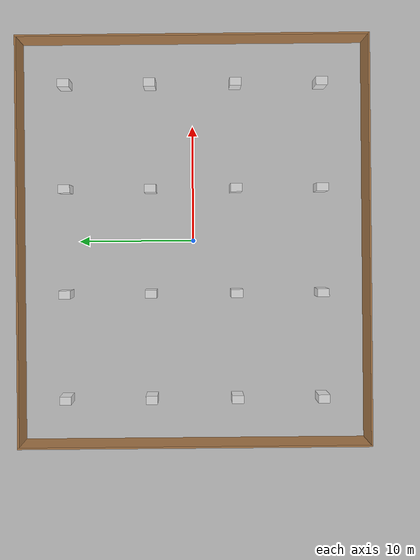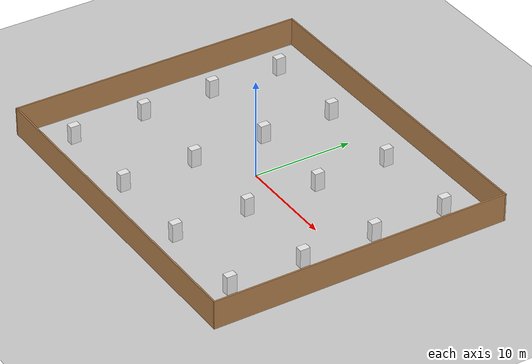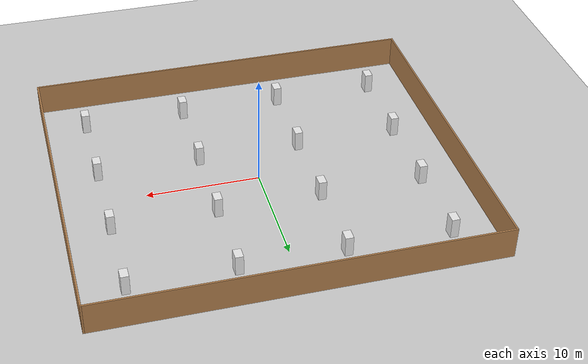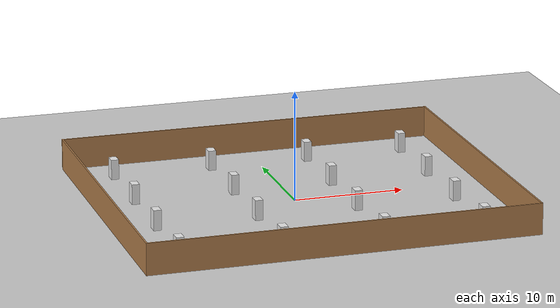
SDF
<sdf version='1.4'>
  <world name='default'>
    <!-- A global light source -->
    <include>
      <uri>model://sun</uri>
    </include>

    <!-- A ground plane -->
    <include>
      <uri>model://ground_plane</uri>
    </include>

    <physics type="ode">
      <real_time_update_rate>1000.0</real_time_update_rate>
      <max_step_size>0.001</max_step_size>
      <real_time_factor>1</real_time_factor>
      <ode>
        <solver>
          <type>quick</type>
          <iters>150</iters>
          <precon_iters>0</precon_iters>
          <sor>1.400000</sor>
          <use_dynamic_moi_rescaling>1</use_dynamic_moi_rescaling>
        </solver>
        <constraints>
          <cfm>0.00001</cfm>
          <erp>0.2</erp>
          <contact_max_correcting_vel>2000.000000</contact_max_correcting_vel>
          <contact_surface_layer>0.01000</contact_surface_layer>
        </constraints>
      </ode>
    </physics>

    <!-- Load model -->
    <include>
      <uri>model://turtlebot3_square2</uri>
    </include>

    <model name='obstacle'>
      <pose frame=''>0 0 0 0 -0 0</pose>
      <link name='obstacle'>
        <collision name='obstacle_1'>
          <pose>-4.55 -3.7 0.25 0 0 0</pose>
          <geometry>
            <box>
              <size>0.7 1 3.1</size>
            </box>
          </geometry>
          <max_contacts>10</max_contacts>
          <surface>
            <bounce/>
            <friction>
              <ode/>
            </friction>
            <contact>
              <ode/>
            </contact>
          </surface>
        </collision>

        <visual name='obstacle_1'>
          <pose>-4.55 -3.7 0.25 0 0 0</pose>
          <geometry>
            <box>
              <size>0.7 1 3.1</size>
            </box>
          </geometry>
          <material>
            <script>
              <uri>file://media/materials/scripts/gazebo.material</uri>
              <name>Gazebo/White</name>
            </script>
          </material>
        </visual>

        <collision name='obstacle_2'>
          <pose>4.55 -3.7 0.25 0 0 0</pose>
          <geometry>
            <box>
              <size>0.7 1 3.1</size>
            </box>
          </geometry>
          <max_contacts>10</max_contacts>
          <surface>
            <bounce/>
            <friction>
              <ode/>
            </friction>
            <contact>
              <ode/>
            </contact>
          </surface>
        </collision>

        <visual name='obstacle_2'>
          <pose>4.55 -3.7 0.25 0 0 0</pose>
          <geometry>
            <box>
              <size>0.7 1 3.1</size>
            </box>
          </geometry>
          <material>
            <script>
              <uri>file://media/materials/scripts/gazebo.material</uri>
              <name>Gazebo/White</name>
            </script>
          </material>
        </visual>

        <collision name='obstacle_3'>
          <pose>-4.55 3.7 0.25 0 0 0</pose>
          <geometry>
            <box>
              <size>0.7 1 3.1</size>
            </box>
          </geometry>
          <max_contacts>10</max_contacts>
          <surface>
            <bounce/>
            <friction>
              <ode/>
            </friction>
            <contact>
              <ode/>
            </contact>
          </surface>
        </collision>

        <visual name='obstacle_3'>
          <pose>-4.55 3.7 0.25 0 0 0</pose>
          <geometry>
            <box>
              <size>0.7 1 3.1</size>
            </box>
          </geometry>
          <material>
            <script>
              <uri>file://media/materials/scripts/gazebo.material</uri>
              <name>Gazebo/White</name>
            </script>
          </material>
        </visual>

        <collision name='obstacle_4'>
          <pose>4.55 3.7 0.25 0 0 0</pose>
          <geometry>
            <box>
              <size>0.7 1 3.1</size>
            </box>
          </geometry>
          <max_contacts>10</max_contacts>
          <surface>
            <bounce/>
            <friction>
              <ode/>
            </friction>
            <contact>
              <ode/>
            </contact>
          </surface>
        </collision>

        <visual name='obstacle_4'>
          <pose>4.55 3.7 0.25 0 0 0</pose>
          <geometry>
            <box>
              <size>0.7 1 3.1</size>
            </box>
          </geometry>
          <material>
            <script>
              <uri>file://media/materials/scripts/gazebo.material</uri>
              <name>Gazebo/White</name>
            </script>
          </material>
        </visual>

        <collision name='obstacle_111'>
          <pose>-13.65 -11.1 0.25 0 0 0</pose>
          <geometry>
            <box>
              <size>0.7 1 3.1</size>
            </box>
          </geometry>
          <max_contacts>10</max_contacts>
          <surface>
            <bounce/>
            <friction>
              <ode/>
            </friction>
            <contact>
              <ode/>
            </contact>
          </surface>
        </collision>

        <visual name='obstacle_111'>
          <pose>-13.65 -11.1 0.25 0 0 0</pose>
          <geometry>
            <box>
              <size>0.7 1 3.1</size>
            </box>
          </geometry>
          <material>
            <script>
              <uri>file://media/materials/scripts/gazebo.material</uri>
              <name>Gazebo/White</name>
            </script>
          </material>
        </visual>

        <collision name='obstacle_222'>
          <pose>-13.65 11.1 0.25 0 0 0</pose>
          <geometry>
            <box>
              <size>0.7 1 3.1</size>
            </box>
          </geometry>
          <max_contacts>10</max_contacts>
          <surface>
            <bounce/>
            <friction>
              <ode/>
            </friction>
            <contact>
              <ode/>
            </contact>
          </surface>
        </collision>

        <visual name='obstacle_222'>
          <pose>-13.65 11.1 0.25 0 0 0</pose>
          <geometry>
            <box>
              <size>0.7 1 3.1</size>
            </box>
          </geometry>
          <material>
            <script>
              <uri>file://media/materials/scripts/gazebo.material</uri>
              <name>Gazebo/White</name>
            </script>
          </material>
        </visual>

        <collision name='obstacle_333'>
          <pose>13.65 -11.1 0.25 0 0 0</pose>
          <geometry>
            <box>
              <size>0.7 1 3.1</size>
            </box>
          </geometry>
          <max_contacts>10</max_contacts>
          <surface>
            <bounce/>
            <friction>
              <ode/>
            </friction>
            <contact>
              <ode/>
            </contact>
          </surface>
        </collision>

        <visual name='obstacle_333'>
          <pose>13.65 -11.1 0.25 0 0 0</pose>
          <geometry>
            <box>
              <size>0.7 1 3.1</size>
            </box>
          </geometry>
          <material>
            <script>
              <uri>file://media/materials/scripts/gazebo.material</uri>
              <name>Gazebo/White</name>
            </script>
          </material>
        </visual>

        <collision name='obstacle_444'>
          <pose>13.65 11.1 0.25 0 0 0</pose>
          <geometry>
            <box>
              <size>0.7 1 3.1</size>
            </box>
          </geometry>
          <max_contacts>10</max_contacts>
          <surface>
            <bounce/>
            <friction>
              <ode/>
            </friction>
            <contact>
              <ode/>
            </contact>
          </surface>
        </collision>

        <visual name='obstacle_444'>
          <pose>13.65 11.1 0.25 0 0 0</pose>
          <geometry>
            <box>
              <size>0.7 1 3.1</size>
            </box>
          </geometry>
          <material>
            <script>
              <uri>file://media/materials/scripts/gazebo.material</uri>
              <name>Gazebo/White</name>
            </script>
          </material>
        </visual>

        <collision name='obstacle_11'>
          <pose>-4.55 -11.1 0.25 0 0 0</pose>
          <geometry>
            <box>
              <size>0.7 1 3.1</size>
            </box>
          </geometry>
          <max_contacts>10</max_contacts>
          <surface>
            <bounce/>
            <friction>
              <ode/>
            </friction>
            <contact>
              <ode/>
            </contact>
          </surface>
        </collision>

        <visual name='obstacle_11'>
          <pose>-4.55 -11.1 0.25 0 0 0</pose>
          <geometry>
            <box>
              <size>0.7 1 3.1</size>
            </box>
          </geometry>
          <material>
            <script>
              <uri>file://media/materials/scripts/gazebo.material</uri>
              <name>Gazebo/White</name>
            </script>
          </material>
        </visual>

        <collision name='obstacle_12'>
          <pose>-4.55 11.1 0.25 0 0 0</pose>
          <geometry>
            <box>
              <size>0.7 1 3.1</size>
            </box>
          </geometry>
          <max_contacts>10</max_contacts>
          <surface>
            <bounce/>
            <friction>
              <ode/>
            </friction>
            <contact>
              <ode/>
            </contact>
          </surface>
        </collision>

        <visual name='obstacle_12'>
          <pose>-4.55 11.1 0.25 0 0 0</pose>
          <geometry>
            <box>
              <size>0.7 1 3.1</size>
            </box>
          </geometry>
          <material>
            <script>
              <uri>file://media/materials/scripts/gazebo.material</uri>
              <name>Gazebo/White</name>
            </script>
          </material>
        </visual>

        <collision name='obstacle_13'>
          <pose>4.55 -11.1 0.25 0 0 0</pose>
          <geometry>
            <box>
              <size>0.7 1 3.1</size>
            </box>
          </geometry>
          <max_contacts>10</max_contacts>
          <surface>
            <bounce/>
            <friction>
              <ode/>
            </friction>
            <contact>
              <ode/>
            </contact>
          </surface>
        </collision>

        <visual name='obstacle_13'>
          <pose>4.55 -11.1 0.25 0 0 0</pose>
          <geometry>
            <box>
              <size>0.7 1 3.1</size>
            </box>
          </geometry>
          <material>
            <script>
              <uri>file://media/materials/scripts/gazebo.material</uri>
              <name>Gazebo/White</name>
            </script>
          </material>
        </visual>

        <collision name='obstacle_14'>
          <pose>4.55 11.1 0.25 0 0 0</pose>
          <geometry>
            <box>
              <size>0.7 1 3.1</size>
            </box>
          </geometry>
          <max_contacts>10</max_contacts>
          <surface>
            <bounce/>
            <friction>
              <ode/>
            </friction>
            <contact>
              <ode/>
            </contact>
          </surface>
        </collision>

        <visual name='obstacle_14'>
          <pose>4.55 11.1 0.25 0 0 0</pose>
          <geometry>
            <box>
              <size>0.7 1 3.1</size>
            </box>
          </geometry>
          <material>
            <script>
              <uri>file://media/materials/scripts/gazebo.material</uri>
              <name>Gazebo/White</name>
            </script>
          </material>
        </visual>

        <collision name='obstacle_21'>
          <pose>-13.65 -3.7 0.25 0 0 0</pose>
          <geometry>
            <box>
              <size>0.7 1 3.1</size>
            </box>
          </geometry>
          <max_contacts>10</max_contacts>
          <surface>
            <bounce/>
            <friction>
              <ode/>
            </friction>
            <contact>
              <ode/>
            </contact>
          </surface>
        </collision>

        <visual name='obstacle_21'>
          <pose>-13.65 -3.7 0.25 0 0 0</pose>
          <geometry>
            <box>
              <size>0.7 1 3.1</size>
            </box>
          </geometry>
          <material>
            <script>
              <uri>file://media/materials/scripts/gazebo.material</uri>
              <name>Gazebo/White</name>
            </script>
          </material>
        </visual>

        <collision name='obstacle_22'>
          <pose>-13.65 3.7 0.25 0 0 0</pose>
          <geometry>
            <box>
              <size>0.7 1 3.1</size>
            </box>
          </geometry>
          <max_contacts>10</max_contacts>
          <surface>
            <bounce/>
            <friction>
              <ode/>
            </friction>
            <contact>
              <ode/>
            </contact>
          </surface>
        </collision>

        <visual name='obstacle_22'>
          <pose>-13.65 3.7 0.25 0 0 0</pose>
          <geometry>
            <box>
              <size>0.7 1 3.1</size>
            </box>
          </geometry>
          <material>
            <script>
              <uri>file://media/materials/scripts/gazebo.material</uri>
              <name>Gazebo/White</name>
            </script>
          </material>
        </visual>

        <collision name='obstacle_23'>
          <pose>13.65 -3.7 0.25 0 0 0</pose>
          <geometry>
            <box>
              <size>0.7 1 3.1</size>
            </box>
          </geometry>
          <max_contacts>10</max_contacts>
          <surface>
            <bounce/>
            <friction>
              <ode/>
            </friction>
            <contact>
              <ode/>
            </contact>
          </surface>
        </collision>

        <visual name='obstacle_23'>
          <pose>13.65 -3.7 0.25 0 0 0</pose>
          <geometry>
            <box>
              <size>0.7 1 3.1</size>
            </box>
          </geometry>
          <material>
            <script>
              <uri>file://media/materials/scripts/gazebo.material</uri>
              <name>Gazebo/White</name>
            </script>
          </material>
        </visual>

        <collision name='obstacle_24'>
          <pose>13.65 3.7 0.25 0 0 0</pose>
          <geometry>
            <box>
              <size>0.7 1 3.1</size>
            </box>
          </geometry>
          <max_contacts>10</max_contacts>
          <surface>
            <bounce/>
            <friction>
              <ode/>
            </friction>
            <contact>
              <ode/>
            </contact>
          </surface>
        </collision>

        <visual name='obstacle_24'>
          <pose>13.65 3.7 0.25 0 0 0</pose>
          <geometry>
            <box>
              <size>0.7 1 3.1</size>
            </box>
          </geometry>
          <material>
            <script>
              <uri>file://media/materials/scripts/gazebo.material</uri>
              <name>Gazebo/White</name>
            </script>
          </material>
        </visual>

      </link>
      <static>1</static>
    </model>

    <scene>
      <ambient>0.4 0.4 0.4 1</ambient>
      <background>0.7 0.7 0.7 1</background>
      <shadows>true</shadows>
    </scene>

    <gui fullscreen='0'>
      <camera name='user_camera'>
        <pose>0.0 0.0 17.0 0 1.5708 0</pose>
        <view_controller>orbit</view_controller>
      </camera>
    </gui>
  </world>
</sdf>

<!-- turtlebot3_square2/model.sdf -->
<sdf version='1.6'>
  <model name='turtlebot3_square'>
    <pose frame=''>0 0 0 0 -0 0</pose>
    <link name='Wall_0'>
      <collision name='Wall_0_Collision'>
        <geometry>
          <box>
            <size>30 0.15 3.1</size>
          </box>
        </geometry>
        <pose frame=''>0 0 1.25 0 -0 0</pose>
      </collision>
      <visual name='Wall_0_Visual'>
        <pose frame=''>0 0 1.25 0 -0 0</pose>
        <geometry>
          <box>
            <size>30 0.15 3.1</size>
          </box>
        </geometry>
        <material>
          <script>
            <uri>file://media/materials/scripts/gazebo.material</uri>
            <name>Gazebo/Wood</name>
          </script>
          <ambient>1 1 1 1</ambient>
        </material>
      </visual>
      <pose frame=''>-17.425 0 0 0 -0 -1.5708</pose>
    </link>
    <link name='Wall_2'>
      <collision name='Wall_2_Collision'>
        <geometry>
          <box>
            <size>35 0.15 3.1</size>
          </box>
        </geometry>
        <pose frame=''>0 0 1.25 0 -0 0</pose>
      </collision>
      <visual name='Wall_2_Visual'>
        <pose frame=''>0 0 1.25 0 -0 0</pose>
        <geometry>
          <box>
            <size>35 0.15 3.1</size>
          </box>
        </geometry>
        <material>
          <script>
            <uri>file://media/materials/scripts/gazebo.material</uri>
            <name>Gazebo/Wood</name>
          </script>
          <ambient>1 1 1 1</ambient>
        </material>
      </visual>
      <pose frame=''>0 -14.925 0 0 -0 0</pose>
    </link>
    <link name='Wall_3'>
      <collision name='Wall_3_Collision'>
        <geometry>
          <box>
            <size>30 0.15 3.1</size>
          </box>
        </geometry>
        <pose frame=''>0 0 1.25 0 -0 0</pose>
      </collision>
      <visual name='Wall_3_Visual'>
        <pose frame=''>0 0 1.25 0 -0 0</pose>
        <geometry>
          <box>
            <size>30 0.15 3.1</size>
          </box>
        </geometry>
        <material>
          <script>
            <uri>file://media/materials/scripts/gazebo.material</uri>
            <name>Gazebo/Wood</name>
          </script>
          <ambient>1 1 1 1</ambient>
        </material>
      </visual>
      <pose frame=''>17.425 0 0 0 -0 1.5708</pose>
    </link>
    <link name='Wall_4'>
      <collision name='Wall_4_Collision'>
        <geometry>
          <box>
            <size>35 0.15 3.1</size>
          </box>
        </geometry>
        <pose frame=''>0 0 1.25 0 -0 0</pose>
      </collision>
      <visual name='Wall_4_Visual'>
        <pose frame=''>0 0 1.25 0 -0 0</pose>
        <geometry>
          <box>
            <size>35 0.15 3.1</size>
          </box>
        </geometry>
        <material>
          <script>
            <uri>file://media/materials/scripts/gazebo.material</uri>
            <name>Gazebo/Wood</name>
          </script>
          <ambient>1 1 1 1</ambient>
        </material>
      </visual>
      <pose frame=''>0 14.925 0 0 -0 3.14159</pose>
    </link>
    <static>1</static>
  </model>
</sdf>
